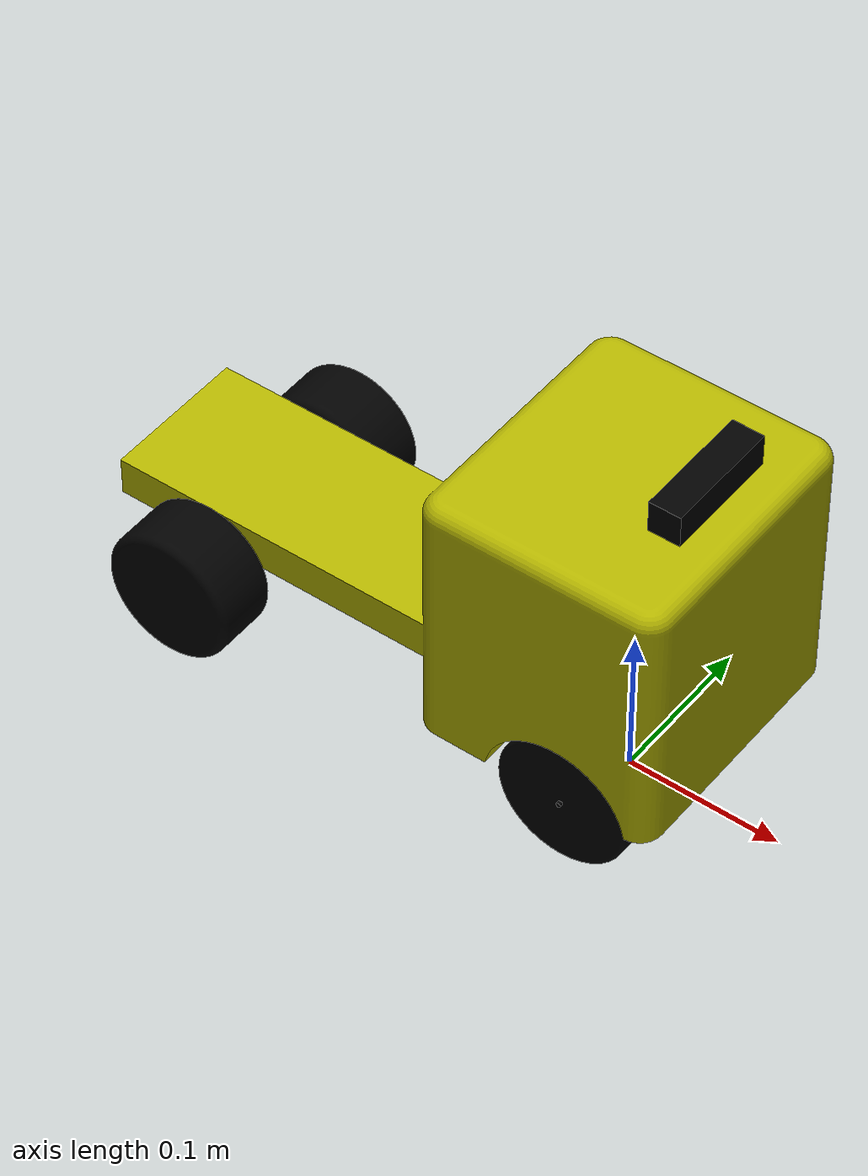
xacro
<?xml version="1.0" ?>
<robot name="tamiyabot" xmlns:xacro="http://www.ros.org/wiki/xacro">

  <!-- Load Simulated or Real Hardware Interfaces -->
    <xacro:arg name="is_sim" default="true"/>

  <xacro:include filename="$(find tamiyabot_description)/urdf/tamiyabot_gazebo.xacro"/>
  <xacro:include filename="$(find tamiyabot_description)/urdf/ros2_controller.xacro"/>

  <material name="yellow">
    <color rgba="0.700 0.700 0.0 1.000"/>
  </material>

  <material name="black">
    <color rgba="0.0 0.0 0.0 1.000"/>
  </material>

<link name="base_footprint"/>

<link name="base_link">
  <inertial>
    <origin xyz="-0.010832508707129422 -0.0319999966499438 0.07339904454848215" rpy="0 0 0"/>
    <mass value="37.13312619630159"/>
    <inertia ixx="0.16987923440449046" iyy="0.3219956854189482" izz="0.3110549539990225" ixy="-5.542446526035638e-09" iyz="8.55484284800756e-09" ixz="-0.054011183378953734"/>
  </inertial>
  <visual>
    <origin xyz="0 0 0" rpy="0 0 0"/>
    <geometry>
      <mesh filename="package://tamiyabot_description/meshes/base_link.stl" scale="0.001 0.001 0.001"/>
    </geometry>
    <material name="yellow"/>
    <material/>
  </visual>
  <collision>
    <origin xyz="0 0 0" rpy="0 0 0"/>
    <geometry>
      <mesh filename="package://tamiyabot_description/meshes/base_link.stl" scale="0.001 0.001 0.001"/>
    </geometry>
  </collision>
</link>

<link name="rear_left_wheel1">
  <inertial>
    <origin xyz="3.21118288182376e-07 0.021000000000005174 9.71445146547012e-17" rpy="0 0 0"/>
    <mass value="1.8054843658150816"/>
    <inertia ixx="0.0010476743842937593" iyy="0.0015752996272435787" izz="0.0010476743842937758" ixy="8.673617379884035e-18" iyz="2.0599841277224584e-18" ixz="2.6020852139652106e-18"/>
  </inertial>
  <visual>
    <origin xyz="0.234009 -0.0155 0.013" rpy="0 0 0"/>
    <geometry>
      <mesh filename="package://tamiyabot_description/meshes/rear_left_wheel1.stl" scale="0.001 0.001 0.001"/>
    </geometry>
    <material name="black"/>
    <material/>
  </visual>
  <collision>
    <origin xyz="0.234009 -0.0155 0.013" rpy="0 0 0"/>
    <geometry>
      <mesh filename="package://tamiyabot_description/meshes/rear_left_wheel1.stl" scale="0.001 0.001 0.001"/>
    </geometry>
  </collision>
</link>

<link name="rear_right_wheel1">
  <inertial>
    <origin xyz="3.211182857398853e-07 -0.020999999999994814 9.8879238130678e-17" rpy="0 0 0"/>
    <mass value="1.8054843658150797"/>
    <inertia ixx="0.001047674384293762" iyy="0.0015752996272436204" izz="0.0010476743842938174" ixy="0.0" iyz="3.0357660829594124e-18" ixz="4.336808689942018e-18"/>
  </inertial>
  <visual>
    <origin xyz="0.234009 0.0795 0.013" rpy="0 0 0"/>
    <geometry>
      <mesh filename="package://tamiyabot_description/meshes/rear_right_wheel1.stl" scale="0.001 0.001 0.001"/>
    </geometry>
    <material name="black"/>
    <material/>
  </visual>
  <collision>
    <origin xyz="0.234009 0.0795 0.013" rpy="0 0 0"/>
    <geometry>
      <mesh filename="package://tamiyabot_description/meshes/rear_right_wheel1.stl" scale="0.001 0.001 0.001"/>
    </geometry>
  </collision>
</link>

<link name="steering_right_link1">
  <inertial>
    <origin xyz="3.2111835662068655e-07 0.0001708440293172464 0.003999999971336172" rpy="0 0 0"/>
    <mass value="0.0031874991762403456"/>
    <inertia ixx="6.951495375837513e-08" iyy="2.9377757708371727e-08" izz="7.177559136720569e-08" ixy="1.514494909690689e-18" iyz="-6.094884864274626e-16" ixz="6.352747104407253e-22"/>
  </inertial>
  <visual>
    <origin xyz="-0.029991 0.1005 0.017" rpy="0 0 0"/>
    <geometry>
      <mesh filename="package://tamiyabot_description/meshes/steering_right_link1.stl" scale="0.001 0.001 0.001"/>
    </geometry>
    <material name="black"/>
    <material/>
  </visual>
  <collision>
    <origin xyz="-0.029991 0.1005 0.017" rpy="0 0 0"/>
    <geometry>
      <mesh filename="package://tamiyabot_description/meshes/steering_right_link1.stl" scale="0.001 0.001 0.001"/>
    </geometry>
  </collision>
</link>

<link name="front_right_wheel1">
  <inertial>
    <origin xyz="3.2111828563233247e-07 0.0 1.5959455978986625e-16" rpy="0 0 0"/>
    <mass value="0.9105437032741225"/>
    <inertia ixx="0.0004316099354611056" iyy="0.000796368727658819" izz="0.0004316121960988347" ixy="7.37257477290143e-18" iyz="2.168404344971009e-18" ixz="5.800481622797449e-18"/>
  </inertial>
  <visual>
    <origin xyz="-0.029991 0.1005 0.013" rpy="0 0 0"/>
    <geometry>
      <mesh filename="package://tamiyabot_description/meshes/front_right_wheel1.stl" scale="0.001 0.001 0.001"/>
    </geometry>
    <material name="black"/>
    <material/>
  </visual>
  <collision>
    <origin xyz="-0.029991 0.1005 0.013" rpy="0 0 0"/>
    <geometry>
      <mesh filename="package://tamiyabot_description/meshes/front_right_wheel1.stl" scale="0.001 0.001 0.001"/>
    </geometry>
  </collision>
</link>

<link name="steering_left_link1">
  <inertial>
    <origin xyz="3.211183591360356e-07 -0.000170844029316497 0.003999999971336172" rpy="0 0 0"/>
    <mass value="0.003187499176240344"/>
    <inertia ixx="6.951495375835819e-08" iyy="2.937775770836961e-08" izz="7.177559136719891e-08" ixy="-1.508989195533536e-18" iyz="6.09488062910989e-16" ixz="0.0"/>
  </inertial>
  <visual>
    <origin xyz="-0.029991 -0.0365 0.017" rpy="0 0 0"/>
    <geometry>
      <mesh filename="package://tamiyabot_description/meshes/steering_left_link1.stl" scale="0.001 0.001 0.001"/>
    </geometry>
    <material name="black"/>
    <material/>
  </visual>
  <collision>
    <origin xyz="-0.029991 -0.0365 0.017" rpy="0 0 0"/>
    <geometry>
      <mesh filename="package://tamiyabot_description/meshes/steering_left_link1.stl" scale="0.001 0.001 0.001"/>
    </geometry>
  </collision>
</link>

<link name="front_left_wheel1">
  <inertial>
    <origin xyz="3.2111828832809275e-07 0.0 1.734723475976807e-18" rpy="0 0 0"/>
    <mass value="0.9105437032741228"/>
    <inertia ixx="0.0004316099354611104" iyy="0.0007963687276588275" izz="0.00043161219609884295" ixy="7.37257477290143e-18" iyz="-1.0842021724855044e-19" ixz="-7.589415207398531e-19"/>
  </inertial>
  <visual>
    <origin xyz="-0.029991 -0.0365 0.013" rpy="0 0 0"/>
    <geometry>
      <mesh filename="package://tamiyabot_description/meshes/front_left_wheel1.stl" scale="0.001 0.001 0.001"/>
    </geometry>
    <material name="black"/>
    <material/>
  </visual>
  <collision>
    <origin xyz="-0.029991 -0.0365 0.013" rpy="0 0 0"/>
    <geometry>
      <mesh filename="package://tamiyabot_description/meshes/front_left_wheel1.stl" scale="0.001 0.001 0.001"/>
    </geometry>
  </collision>
</link>

<link name="Camera11">
  <inertial>
    <origin xyz="-0.01999967888171309 -2.220446049250313e-16 0.020000000000000018" rpy="0 0 0"/>
    <mass value="0.2354999999999996"/>
    <inertia ixx="0.0001182406250000035" iyy="1.5700000000003905e-05" izz="0.0001182406249999996" ixy="-1.8973538018496328e-18" iyz="4.336808689942018e-19" ixz="4.336808689942018e-19"/>
  </inertial>
  <visual>
    <origin xyz="-0.079991 0.032 -0.162" rpy="0 0 0"/>
    <geometry>
      <mesh filename="package://tamiyabot_description/meshes/Camera11.stl" scale="0.001 0.001 0.001"/>
    </geometry>
    <material name="black"/>
    <material/>
  </visual>
  <collision>
    <origin xyz="-0.079991 0.032 -0.162" rpy="0 0 0"/>
    <geometry>
      <mesh filename="package://tamiyabot_description/meshes/Camera11.stl" scale="0.001 0.001 0.001"/>
    </geometry>
  </collision>
</link>

<!-- Define the joints -->
<joint name="base_joint" type="fixed">
    <parent link="base_footprint"/>
    <child link="base_link"/>
    <origin xyz="0.0 0.0 0.1" rpy="0.0 0.0 0.0"/>
</joint>

<joint name="rear_left_wheel_joint" type="continuous">
  <origin xyz="-0.234009 0.0155 -0.013" rpy="0 0 0"/>
  <parent link="base_link"/>
  <child link="rear_left_wheel1"/>
  <axis xyz="0.0 1.0 0.0"/>
</joint>

<joint name="rear_right_wheel_joint" type="continuous">
  <origin xyz="-0.234009 -0.0795 -0.013" rpy="0 0 0"/>
  <parent link="base_link"/>
  <child link="rear_right_wheel1"/>
  <axis xyz="0.0 1.0 0.0"/>
</joint>

<joint name="right_wheel_steering_joint" type="revolute">
  <origin xyz="0.029991 -0.1005 -0.017" rpy="0 0 0"/>
  <parent link="base_link"/>
  <child link="steering_right_link1"/>
  <axis xyz="0.0 0.0 -1.0"/>
  <limit upper="0.785398" lower="-0.785398" effort="100" velocity="30"/>
</joint>

<joint name="left_wheel_steering_joint" type="revolute">
  <origin xyz="0.029991 0.0365 -0.017" rpy="0 0 0"/>
  <parent link="base_link"/>
  <child link="steering_left_link1"/>
  <axis xyz="0.0 0.0 -1.0"/>
  <limit upper="0.785398" lower="-0.785398" effort="100" velocity="30"/>
</joint>

<joint name="front_right_wheel_joint" type="continuous">
  <origin xyz="0.0 0.01 0.004" rpy="0 0 0"/>
  <parent link="steering_right_link1"/>
  <child link="front_right_wheel1"/>
  <axis xyz="0.0 1.0 0.0"/>
</joint>

<joint name="front_left_wheel_joint" type="continuous">
  <origin xyz="0.0 -0.01 0.004" rpy="0 0 0"/>
  <parent link="steering_left_link1"/>
  <child link="front_left_wheel1"/>
  <axis xyz="0.0 1.0 0.0"/>
</joint>

<joint name="camera_joint" type="fixed">
  <origin xyz="0.079991 -0.032 0.162" rpy="0 0 0"/>
  <parent link="base_link"/>
  <child link="Camera11"/>
</joint>

</robot>
